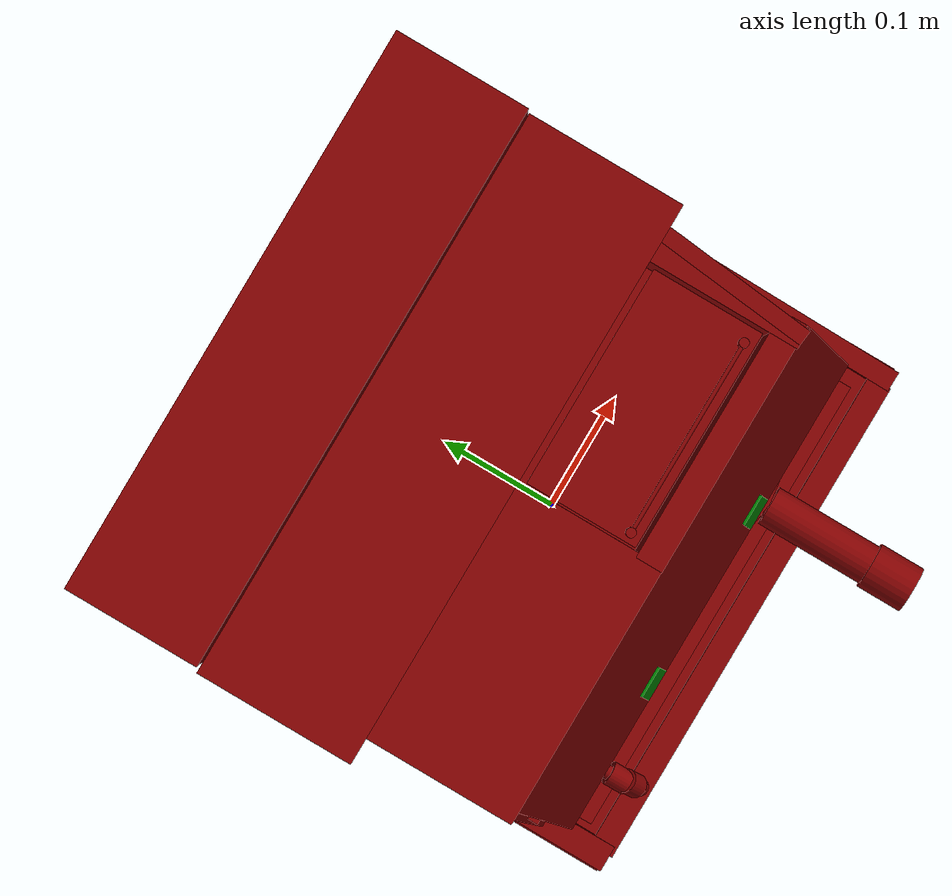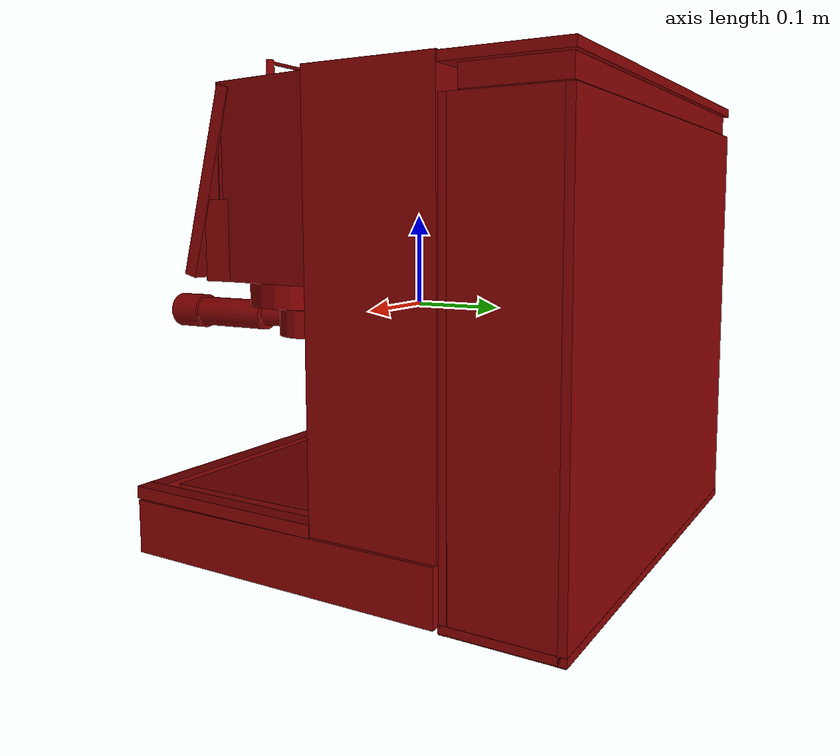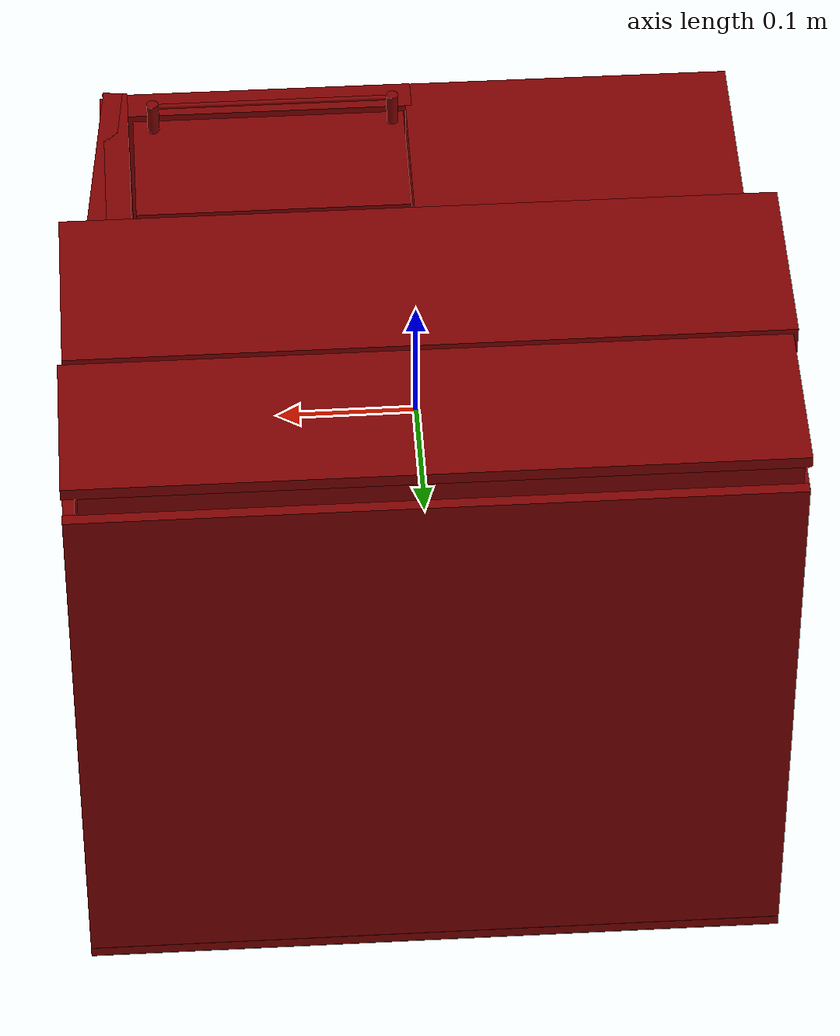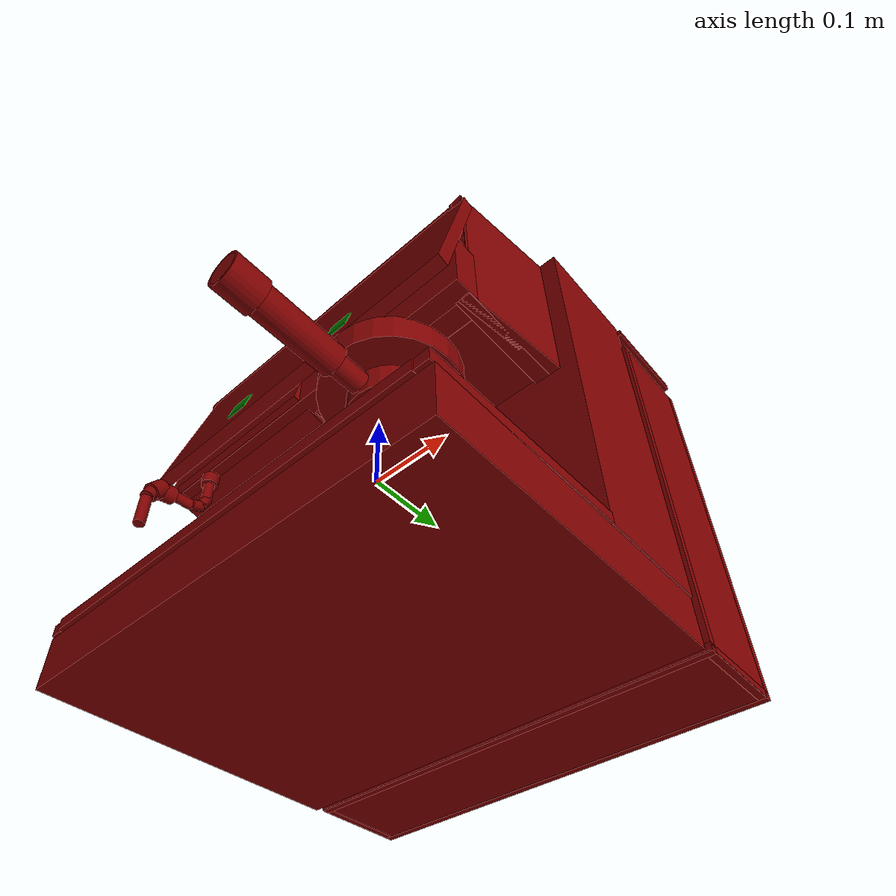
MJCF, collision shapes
<?xml version='1.0' encoding='UTF-8'?>
<mujoco model="model">
  <compiler angle="radian"/>
  <asset>
    <mesh file="visuals/Body001.obj" name="Body001_vis"/>
    <mesh file="visuals/Container001_Clear.obj" name="Container001_Clear_vis"/>
    <mesh file="visuals/Lever001.obj" name="Lever001_vis"/>
    <mesh file="visuals/Lever002.obj" name="Lever002_vis"/>
    <mesh file="visuals/Lid001.obj" name="Lid001_vis"/>
    <mesh file="visuals/Lid002.obj" name="Lid002_vis"/>
    <mesh file="visuals/Lid003.obj" name="Lid003_vis"/>
    <texture file="visuals/T_BC001.png" name="Body001_material" type="2d"/>
    <material name="Body001_material" rgba="1 1 1 1.0" texture="Body001_material" shininess="0.4472135901451111" specular="1"/>
    <material name="Container001_Clear_material" rgba="0.800000011920929 0.800000011920929 0.800000011920929 0.10000000149011612" shininess="0.5" specular="0.3103448502657381"/>
    <texture file="visuals/T_BC001.png" name="Lid003_material" type="2d"/>
    <material name="Lid003_material" rgba="1 1 1 1.0" texture="Lid003_material" shininess="0.4472135901451111" specular="0.3103448502657381"/>
    <texture file="visuals/T_BC001.png" name="Lever001_material" type="2d"/>
    <material name="Lever001_material" rgba="1 1 1 1.0" texture="Lever001_material" shininess="0.4472135901451111" specular="0.3103448502657381"/>
    <texture file="visuals/T_BC001.png" name="Lever002_material" type="2d"/>
    <material name="Lever002_material" rgba="1 1 1 1.0" texture="Lever002_material" shininess="0.4472135901451111" specular="0.3103448502657381"/>
    <texture file="visuals/T_BC001.png" name="Lid001_material" type="2d"/>
    <material name="Lid001_material" rgba="1 1 1 1.0" texture="Lid001_material" shininess="0.4472135901451111" specular="0.3103448502657381"/>
    <texture file="visuals/T_BC001.png" name="Lid002_material" type="2d"/>
    <material name="Lid002_material" rgba="1 1 1 1.0" texture="Lid002_material" shininess="0.4472135901451111" specular="0.3103448502657381"/>
  </asset>
  <default>
    <default class="visual">
      <geom conaffinity="0" contype="0" group="1" type="mesh"/>
    </default>
    <default class="collision">
      <geom group="0" rgba="0.5 0 0 0.5"/>
    </default>
    <default class="spawn">
      <geom group="0" rgba="1 1 1 0.5" contype="0" conaffinity="0"/>
      <site group="0" rgba="1 1 1 0.5"/>
    </default>
    <default class="region">
      <geom group="1" conaffinity="0" contype="0" rgba="0 1 0 0"/>
    </default>
  </default>
  <worldbody>
    <body>
      <body name="object">
        <geom class="collision" type="box" pos="-0.08052422851324081 -0.14134667813777924 0.0701083391904831" size="0.013672706671059132 0.013672706671059132 0.0010539739159867167" quat="0.6087613701820374 -0.7933533787727356 0.0 0.0" name="start_button_1" rgba="0.0 0.5 0 0.5"/>
        <geom class="collision" type="box" pos="0.07782506942749023 -0.14123371243476868 0.07027100771665573" size="0.013672706671059132 0.013672706671059132 0.0010539739159867167" quat="0.6087613701820374 -0.7933533787727356 0.0 0.0" name="start_button_2" rgba="0.0 0.5 0 0.5"/>
        <site type="cylinder" rgba="0.8 0.5 0.25 1" size="0.0025000006426125765 0.1031198650598526" pos="0.08961264789104462 -0.07551560550928116 -0.14416548609733582" name="coffee_liquid"/>
        <site rgba="0 0 0 0" size="0.009999999776482582 0.009999999776482582" pos="0.08962567150592804 -0.07565286010503769 -0.18143731355667114" name="receptacle_place_site"/>
        <geom mesh="Body001_vis" type="mesh" solimp="0.998 0.998 0.001" solref="0.001 1" density="100" friction="0.95 0.3 0.1" class="visual" material="Body001_material"/>
        <geom class="collision" type="box" pos="0.00010415073484182358 -0.014450106769800186 -0.22385218739509583" size="0.24726690351963043 0.17936858534812927 0.028345149010419846" quat="1.0 0.0 0.0 0.0"/>
        <geom class="collision" type="box" pos="0.00010415073484182358 0.10083890706300735 0.0183918084949255" size="0.2478623390197754 0.06819730252027512 0.211790069937706" quat="1.0 0.0 0.0 0.0"/>
        <geom class="collision" type="box" pos="-0.0025067515671253204 -0.09522977471351624 0.07594393938779831" size="0.21858088672161102 0.022456519305706024 0.04059364274144173" quat="1.0 0.0 0.0 0.0"/>
        <geom class="collision" type="box" pos="0.0015112357214093208 -0.11415374279022217 0.13258379697799683" size="0.2160433679819107 0.09598646312952042 0.007202429231256247" quat="0.7951400876045227 0.6064257621765137 5.1805210240248005e-19 -3.975108457466721e-19"/>
        <geom class="collision" type="box" pos="-0.1108783558011055 -0.027321986854076385 0.13239559531211853" size="0.11390603333711624 0.06870334595441818 0.09704471379518509" quat="1.0 0.0 0.0 0.0"/>
        <geom class="collision" type="cylinder" pos="0.08990498632192612 -0.07331632822751999 0.02048647776246071" size="0.07626838237047195 0.016506172716617584" quat="1.0 0.0 0.0 0.0"/>
        <geom class="collision" type="box" pos="0.21503205597400665 -0.031888023018836975 0.13240626454353333" size="0.006732685025781393 0.06731262803077698 0.09705666452646255" quat="0.9986422061920166 0.0 0.0 -0.05209388583898544"/>
        <geom class="collision" type="box" pos="-0.11431698501110077 -0.08335388451814651 0.12892234325408936" size="0.11046846956014633 0.021891482174396515 0.09598620235919952" quat="0.9943941235542297 -0.10573705285787582 2.347834212776419e-17 2.5517228480920703e-24"/>
        <geom class="collision" type="box" pos="0.20665135979652405 -0.030770596116781235 0.13240626454353333" size="0.00865946151316166 0.06737849116325378 0.09705666452646255" quat="1.0 0.0 0.0 0.0"/>
        <geom class="collision" type="box" pos="0.00010415073484182358 -0.18775580823421478 -0.18855726718902588" size="0.23021727800369263 0.010661262087523937 0.006522944662719965" quat="1.0 0.0 0.0 0.0"/>
        <geom class="collision" type="box" pos="0.2382904589176178 -0.08195678144693375 -0.18815499544143677" size="0.11538030207157135 0.009120794013142586 0.00652298191562295" quat="0.7121394276618958 0.0 0.0 0.702038049697876"/>
        <geom class="collision" type="box" pos="-0.23331895470619202 -0.08034873008728027 -0.18815499544143677" size="0.01184128038585186 0.11553887277841568 0.006522949784994125" quat="1.0 0.0 0.0 0.0"/>
        <geom class="collision" type="box" pos="0.09959331154823303 -0.027321986854076385 0.08148794621229172" size="0.11046768724918365 0.06870348751544952 0.0404544435441494" quat="1.0 0.0 0.0 0.0"/>
        <geom class="collision" type="box" pos="0.09960655868053436 -0.08484944701194763 0.13239559531211853" size="0.10086505115032196 0.011549703776836395 0.09704537689685822" quat="1.0 0.0 0.0 0.0"/>
        <body name="Container001_Clear">
          <joint axis="0.0 0.0 1.0" pos="0.0009127780795097351 0.2299291342496872 -0.027076788246631622" limited="true" name="Container001_Clear_joint" range="0.0 0.08" type="slide" damping="1" frictionloss="1" armature=".01" stiffness="0.05"/>
          <geom mesh="Container001_Clear_vis" type="mesh" solimp="0.998 0.998 0.001" solref="0.001 1" density="100" friction="0.95 0.3 0.1" class="visual" material="Container001_Clear_material"/>
          <geom class="collision" type="box" pos="0.0034755179658532143 0.2843846082687378 -0.02765852026641369" size="0.2475619912147522 0.004041829612106085 0.22387200593948364" quat="1.0 0.0 0.0 0.0"/>
          <geom class="collision" type="box" pos="0.0034755179658532143 0.17628160119056702 -0.02765852026641369" size="0.2475619912147522 0.004041827283799648 0.22387200593948364" quat="1.0 0.0 0.0 0.0"/>
          <geom class="collision" type="box" pos="0.2467072755098343 0.2303331196308136 -0.02765852026641369" size="0.0040418244898319244 0.056772515177726746 0.22387172281742096" quat="1.0 0.0 0.0 0.0"/>
          <geom class="collision" type="box" pos="-0.24019929766654968 0.2303331196308136 -0.02765852026641369" size="0.0040418244898319244 0.056772515177726746 0.22387181222438812" quat="1.0 0.0 0.0 0.0"/>
          <geom class="collision" type="box" pos="0.0034755179658532143 0.23005342483520508 -0.246702641248703" size="0.2475619912147522 0.058637265115976334 0.004041824955493212" quat="1.0 0.0 0.0 0.0"/>
          <body name="Lid003">
            <joint axis="0.0 0.0 1.0" pos="0.0009169243276119232 0.22992953658103943 0.21118798851966858" limited="true" name="Lid003_joint" range="0.0 0.08" type="slide" damping="1" frictionloss="1" armature=".01" stiffness="0.05"/>
            <geom mesh="Lid003_vis" type="mesh" solimp="0.998 0.998 0.001" solref="0.001 1" density="100" friction="0.95 0.3 0.1" class="visual" material="Lid003_material"/>
            <geom class="collision" type="box" pos="0.0034755179658532143 0.23005342483520508 0.22395887970924377" size="0.2475619912147522 0.05863722786307335 0.004486325196921825" quat="1.0 0.0 0.0 0.0"/>
            <geom class="collision" type="box" pos="0.00018260348588228226 0.2337649166584015 0.20977076888084412" size="0.24031421542167664 0.04943392798304558 0.010890725068747997" quat="1.0 0.0 0.0 0.0"/>
          </body>
        </body>
        <body name="Lever001">
          <joint axis="0.0 0.0 -1.0" pos="0.089718759059906 -0.07450322806835175 -0.022326361387968063" limited="true" name="Lever001_joint" range="0.0 0.7853981633974483" type="hinge" damping="1" frictionloss="1" armature=".01" stiffness="1"/>
          <geom mesh="Lever001_vis" type="mesh" solimp="0.998 0.998 0.001" solref="0.001 1" density="100" friction="0.95 0.3 0.1" class="visual" material="Lever001_material"/>
          <geom class="collision" type="cylinder" pos="0.08990498632192612 -0.07331632822751999 -0.01492978073656559" size="0.04549261927604675 0.015040182508528233" quat="1.0 0.0 0.0 0.0"/>
          <geom class="collision" type="cylinder" pos="0.08977140486240387 -0.1357906311750412 -0.012990682385861874" size="0.011933913454413414 0.02030511200428009" quat="0.7071068286895752 -0.7071067690849304 0.0 0.0"/>
          <geom class="collision" type="cylinder" pos="0.08977140486240387 -0.21912036836147308 -0.012990685179829597" size="0.0169413723051548 0.06716911494731903" quat="0.7071068286895752 -0.7071067690849304 0.0 0.0"/>
          <geom class="collision" type="cylinder" pos="0.08977140486240387 -0.2663322389125824 -0.012990688905119896" size="0.019784532487392426 0.019781887531280518" quat="0.7071068286895752 -0.7071067690849304 0.0 0.0"/>
        </body>
        <body name="Lever002">
          <joint axis="-3.065163420185057e-15 0.0 -1.0" pos="-0.16350696980953217 -0.1102323979139328 0.04045846313238144" limited="true" name="Lever002_joint" range="0.0 0.7853981633974483" type="hinge" damping="1" frictionloss="1" armature=".01" stiffness="1"/>
          <geom mesh="Lever002_vis" type="mesh" solimp="0.998 0.998 0.001" solref="0.001 1" density="100" friction="0.95 0.3 0.1" class="visual" material="Lever002_material"/>
          <geom class="collision" type="cylinder" pos="-0.16299021244049072 -0.11079901456832886 0.028889335691928864" size="0.009939825162291527 0.006390679161995649" quat="1.0 0.0 0.0 0.0"/>
          <geom class="collision" type="cylinder" pos="-0.16299021244049072 -0.11079901456832886 0.009809248149394989" size="0.005997099913656712 0.012104864232242107" quat="1.0 0.0 0.0 0.0"/>
          <geom class="collision" type="cylinder" pos="-0.16299021244049072 -0.11330541223287582 -0.008074268698692322" size="0.005997099913656712 0.008840130642056465" quat="0.9782189726829529 -0.20757576823234558 4.609109930149574e-17 2.370900743042989e-24"/>
          <geom class="collision" type="cylinder" pos="-0.16299021244049072 -0.12150202691555023 -0.01721924915909767" size="0.005997099913656712 0.008840130642056465" quat="0.8494779467582703 -0.5276241302490234 1.1715609155005767e-16 9.349852394552638e-24"/>
          <geom class="collision" type="cylinder" pos="-0.16299021244049072 -0.13944199681282043 -0.021565940231084824" size="0.005997099913656712 0.01316235214471817" quat="0.7363584041595459 -0.676591694355011 1.5023354870350575e-16 -3.803489304649035e-24"/>
          <geom class="collision" type="cylinder" pos="-0.16299021244049072 -0.16041448712348938 -0.025955528020858765" size="0.01017691195011139 0.009176742285490036" quat="0.7788244485855103 -0.6272419691085815 1.3927569522311368e-16 2.5978284547864366e-23"/>
          <geom class="collision" type="cylinder" pos="-0.16181965172290802 -0.17153479158878326 -0.030930398032069206" size="0.01017691195011139 0.00917674321681261" quat="0.949850857257843 -0.31270328164100647 6.943407001329318e-17 1.7709676464443855e-23"/>
          <geom class="collision" type="cylinder" pos="-0.16152702271938324 -0.1782654970884323 -0.04107522964477539" size="0.007550795562565327 0.006808714475482702" quat="0.982801616191864 -0.1846645027399063 4.100375324583741e-17 2.0325952589271066e-23"/>
          <geom class="collision" type="cylinder" pos="-0.1613319218158722 -0.18089249730110168 -0.0678635686635971" size="0.0063952174969017506 0.01804647035896778" quat="0.9999983906745911 -0.001780710881575942 3.9539057504154555e-19 1.585943318796237e-23"/>
        </body>
        <body name="Lid001">
          <joint axis="0.0 0.0 1.0" pos="1.1920928955078125e-07 -0.07828736305236816 -0.1894150823354721" limited="true" name="Lid001_joint" range="0.0 0.08" type="slide" damping="1" frictionloss="1" armature=".01" stiffness="0.05"/>
          <geom mesh="Lid001_vis" type="mesh" solimp="0.998 0.998 0.001" solref="0.001 1" density="100" friction="0.95 0.3 0.1" class="visual" material="Lid001_material"/>
          <geom class="collision" type="box" pos="-0.0003312602639198303 -0.07833429425954819 -0.1873769760131836" size="0.21466021239757538 0.09051676839590073 0.004174266941845417" quat="1.0 0.0 0.0 0.0"/>
        </body>
        <body name="Lid002">
          <joint axis="-1.0 0.0 0.0" pos="0.1004614531993866 0.027825012803077698 0.2272149920463562" limited="true" name="Lid002_joint" range="0.0 1.5707963267948966" type="hinge" damping="1" frictionloss="1" armature=".01" stiffness="0.05"/>
          <geom mesh="Lid002_vis" type="mesh" solimp="0.998 0.998 0.001" solref="0.001 1" density="100" friction="0.95 0.3 0.1" class="visual" material="Lid002_material"/>
          <geom class="collision" type="box" pos="0.09977670013904572 -0.02116546407341957 0.22519907355308533" size="0.09490972012281418 0.04818883538246155 0.0027882265858352184" quat="1.0 0.0 0.0 0.0"/>
          <geom class="collision" type="cylinder" pos="0.09619627147912979 -0.05997134745121002 0.24966245889663696" size="0.0017096736701205373 0.08136699348688126" quat="0.7071068286895752 -0.0 0.7071067690849304 0.0"/>
          <geom class="collision" type="cylinder" pos="0.18040575087070465 -0.05997134745121002 0.23925483226776123" size="0.00406724913045764 0.012763452716171741" quat="1.0 0.0 0.0 0.0"/>
          <geom class="collision" type="cylinder" pos="0.013042598962783813 -0.05997134745121002 0.23925483226776123" size="0.00406724913045764 0.012763452716171741" quat="1.0 0.0 0.0 0.0"/>
        </body>
        <geom class="region" name="reg_main" type="box" pos="0.0 0.044904887676239014 0.0" size="0.24681895971298218 0.24328896403312683 0.2520182728767395"/>
      </body>
    </body>
  </worldbody>
  <actuator>
    <motor name="Container001_Clear_joint_actuator" joint="Container001_Clear_joint" gear="10"/>
    <motor name="Lever001_joint_actuator" joint="Lever001_joint" gear="10"/>
    <motor name="Lever002_joint_actuator" joint="Lever002_joint" gear="10"/>
    <motor name="Lid001_joint_actuator" joint="Lid001_joint" gear="10"/>
    <motor name="Lid002_joint_actuator" joint="Lid002_joint" gear="10"/>
    <motor name="Lid003_joint_actuator" joint="Lid003_joint" gear="10"/>
  </actuator>
</mujoco>
